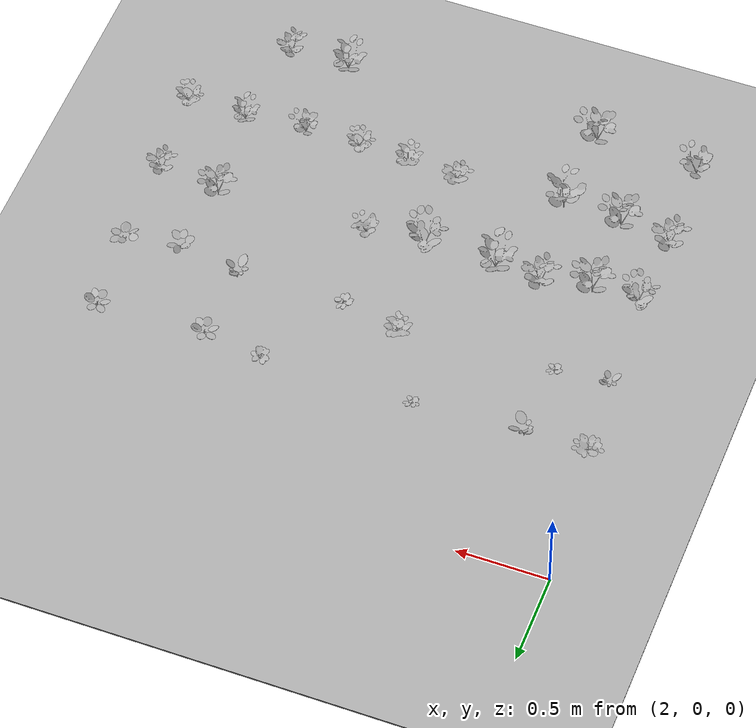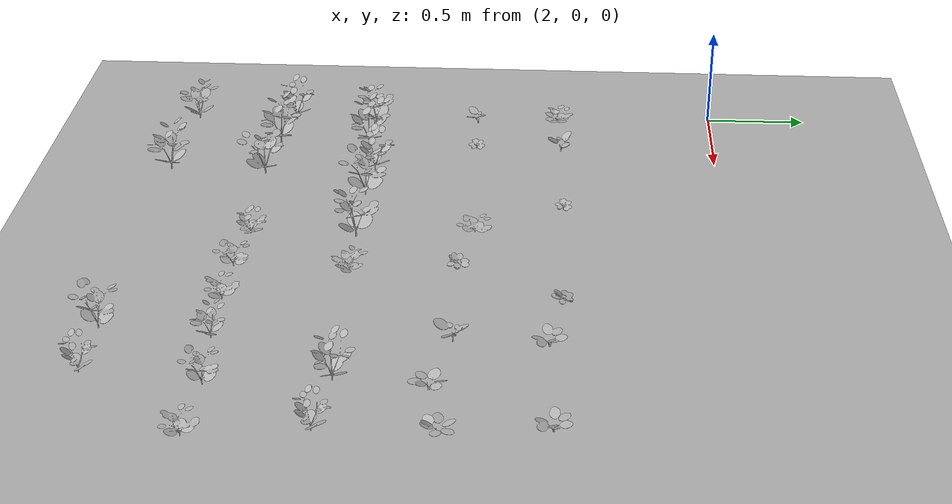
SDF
<sdf version="1.7">
 <world name="default">
  <model name="ground_plane">
   <static>1</static>
   <link name="link">
    <collision name="collision">
     <geometry><plane><normal>0 0 1</normal><size>100 100</size></plane></geometry>
     <surface>
      <contact><collide_bitmask>65535</collide_bitmask></contact>
      <friction><ode><mu>100</mu><mu2>50</mu2></ode></friction>
     </surface>
    </collision>
    <visual name="visual">
     <cast_shadows>0</cast_shadows>
     <geometry><plane><normal>0 0 1</normal><size>100 100</size></plane></geometry>
     <material>
      <ambient>0.2 0.2 0.2 1.0</ambient>
      <diffuse>0.2 0.2 0.2 1.0</diffuse>
      <specular>0.2 0.2 0.2 1.0</specular>
      <emissive>0.2 0.2 0.2 1.0</emissive>
     </material>
    </visual>
   </link>
  </model>
  <model name="ground">
   <pose>5 -0.5 0.01  3.141592654 0 0</pose>
   <static>true</static>
   <link name="body">
    <visual name="visual">
     <cast_shadows>0</cast_shadows>
     <geometry>
      <mesh><uri>file:///home/ifcosta/catkin_ws/src/cnn_line/worlds/models/ground.obj</uri></mesh>
     </geometry>
    </visual>
   </link>
  </model>
  <model name="plt_7">
   <pose>2.12 -1.23 0.0155 0.0 0.0 0.28012</pose>
   <static>true</static>
   <link name="body">
    <visual name="visual">
     <geometry>
      <mesh><uri>file:///home/ifcosta/catkin_ws/src/cnn_line/worlds/models/plant1.obj</uri></mesh>
     </geometry>
    </visual>
   </link>
  </model>
  <model name="plt_8">
   <pose>2.41 -1.22 0.0153 0.0 0.0 0.33012</pose>
   <static>true</static>
   <link name="body">
    <visual name="visual">
     <geometry>
      <mesh><uri>file:///home/ifcosta/catkin_ws/src/cnn_line/worlds/models/plant4.obj</uri></mesh>
     </geometry>
    </visual>
   </link>
  </model>
  <model name="plt_11">
   <pose>3.26 -1.18 0.0165 0.0 0.0 0.89227</pose>
   <static>true</static>
   <link name="body">
    <visual name="visual">
     <geometry>
      <mesh><uri>file:///home/ifcosta/catkin_ws/src/cnn_line/worlds/models/plant0.obj</uri></mesh>
     </geometry>
    </visual>
   </link>
  </model>
  <model name="plt_12">
   <pose>3.58 -1.24 0.012 0.0 0.0 0.88482</pose>
   <static>true</static>
   <link name="body">
    <visual name="visual">
     <geometry>
      <mesh><uri>file:///home/ifcosta/catkin_ws/src/cnn_line/worlds/models/plant5.obj</uri></mesh>
     </geometry>
    </visual>
   </link>
  </model>
  <model name="plt_14">
   <pose>4.19 -1.23 0.0128 0.0 0.0 -2.1002</pose>
   <static>true</static>
   <link name="body">
    <visual name="visual">
     <geometry>
      <mesh><uri>file:///home/ifcosta/catkin_ws/src/cnn_line/worlds/models/plant3.obj</uri></mesh>
     </geometry>
    </visual>
   </link>
  </model>
  <model name="plt_15">
   <pose>4.51 -1.29 0.0145 0.0 0.0 2.1529</pose>
   <static>true</static>
   <link name="body">
    <visual name="visual">
     <geometry>
      <mesh><uri>file:///home/ifcosta/catkin_ws/src/cnn_line/worlds/models/plant2.obj</uri></mesh>
     </geometry>
    </visual>
   </link>
  </model>
  <model name="plt_16">
   <pose>4.81 -1.25 0.0153 0.0 0.0 -1.7667</pose>
   <static>true</static>
   <link name="body">
    <visual name="visual">
     <geometry>
      <mesh><uri>file:///home/ifcosta/catkin_ws/src/cnn_line/worlds/models/plant2.obj</uri></mesh>
     </geometry>
    </visual>
   </link>
  </model>
  <model name="plt_41">
   <pose>2.08 -0.808 0.0134 0.0 0.0 -1.1456</pose>
   <static>true</static>
   <link name="body">
    <visual name="visual">
     <geometry>
      <mesh><uri>file:///home/ifcosta/catkin_ws/src/cnn_line/worlds/models/plant0.obj</uri></mesh>
     </geometry>
    </visual>
   </link>
  </model>
  <model name="plt_42">
   <pose>2.44 -0.77 0.0154 0.0 0.0 -1.1835</pose>
   <static>true</static>
   <link name="body">
    <visual name="visual">
     <geometry>
      <mesh><uri>file:///home/ifcosta/catkin_ws/src/cnn_line/worlds/models/plant3.obj</uri></mesh>
     </geometry>
    </visual>
   </link>
  </model>
  <model name="plt_44">
   <pose>3.02 -0.764 0.0167 0.0 0.0 0.11969</pose>
   <static>true</static>
   <link name="body">
    <visual name="visual">
     <geometry>
      <mesh><uri>file:///home/ifcosta/catkin_ws/src/cnn_line/worlds/models/plant4.obj</uri></mesh>
     </geometry>
    </visual>
   </link>
  </model>
  <model name="plt_47">
   <pose>3.85 -0.755 0.0146 0.0 0.0 1.9338</pose>
   <static>true</static>
   <link name="body">
    <visual name="visual">
     <geometry>
      <mesh><uri>file:///home/ifcosta/catkin_ws/src/cnn_line/worlds/models/plant5.obj</uri></mesh>
     </geometry>
    </visual>
   </link>
  </model>
  <model name="plt_48">
   <pose>4.19 -0.81 0.014 0.0 0.0 -0.094482</pose>
   <static>true</static>
   <link name="body">
    <visual name="visual">
     <geometry>
      <mesh><uri>file:///home/ifcosta/catkin_ws/src/cnn_line/worlds/models/plant2.obj</uri></mesh>
     </geometry>
    </visual>
   </link>
  </model>
  <model name="plt_50">
   <pose>4.78 -0.785 0.0175 0.0 0.0 -0.36478</pose>
   <static>true</static>
   <link name="body">
    <visual name="visual">
     <geometry>
      <mesh><uri>file:///home/ifcosta/catkin_ws/src/cnn_line/worlds/models/plant2.obj</uri></mesh>
     </geometry>
    </visual>
   </link>
  </model>
  <model name="plt_10109">
   <pose>2.14 -2.72 0.0145 0.0 0.0 -2.0586</pose>
   <static>true</static>
   <link name="body">
    <visual name="visual">
     <geometry>
      <mesh><uri>file:///home/ifcosta/catkin_ws/src/cnn_line/worlds/models/plant12.obj</uri></mesh>
     </geometry>
    </visual>
   </link>
  </model>
  <model name="plt_10111">
   <pose>2.71 -2.75 0.0155 0.0 0.0 -1.4388</pose>
   <static>true</static>
   <link name="body">
    <visual name="visual">
     <geometry>
      <mesh><uri>file:///home/ifcosta/catkin_ws/src/cnn_line/worlds/models/plant13.obj</uri></mesh>
     </geometry>
    </visual>
   </link>
  </model>
  <model name="plt_10116">
   <pose>4.14 -2.76 0.0131 0.0 0.0 0.6945</pose>
   <static>true</static>
   <link name="body">
    <visual name="visual">
     <geometry>
      <mesh><uri>file:///home/ifcosta/catkin_ws/src/cnn_line/worlds/models/plant12.obj</uri></mesh>
     </geometry>
    </visual>
   </link>
  </model>
  <model name="plt_10117">
   <pose>4.47 -2.76 0.0148 0.0 0.0 -0.18004</pose>
   <static>true</static>
   <link name="body">
    <visual name="visual">
     <geometry>
      <mesh><uri>file:///home/ifcosta/catkin_ws/src/cnn_line/worlds/models/plant11.obj</uri></mesh>
     </geometry>
    </visual>
   </link>
  </model>
  <model name="plt_10143">
   <pose>2.12 -2.2 0.0142 0.0 0.0 -0.61574</pose>
   <static>true</static>
   <link name="body">
    <visual name="visual">
     <geometry>
      <mesh><uri>file:///home/ifcosta/catkin_ws/src/cnn_line/worlds/models/plant12.obj</uri></mesh>
     </geometry>
    </visual>
   </link>
  </model>
  <model name="plt_10144">
   <pose>2.4 -2.24 0.0167 0.0 0.0 -1.238</pose>
   <static>true</static>
   <link name="body">
    <visual name="visual">
     <geometry>
      <mesh><uri>file:///home/ifcosta/catkin_ws/src/cnn_line/worlds/models/plant13.obj</uri></mesh>
     </geometry>
    </visual>
   </link>
  </model>
  <model name="plt_10145">
   <pose>2.73 -2.27 0.013 0.0 0.0 -3.0611</pose>
   <static>true</static>
   <link name="body">
    <visual name="visual">
     <geometry>
      <mesh><uri>file:///home/ifcosta/catkin_ws/src/cnn_line/worlds/models/plant13.obj</uri></mesh>
     </geometry>
    </visual>
   </link>
  </model>
  <model name="plt_10147">
   <pose>3.32 -2.24 0.0153 0.0 0.0 -0.66201</pose>
   <static>true</static>
   <link name="body">
    <visual name="visual">
     <geometry>
      <mesh><uri>file:///home/ifcosta/catkin_ws/src/cnn_line/worlds/models/plant10.obj</uri></mesh>
     </geometry>
    </visual>
   </link>
  </model>
  <model name="plt_10148">
   <pose>3.61 -2.27 0.0126 0.0 0.0 0.78243</pose>
   <static>true</static>
   <link name="body">
    <visual name="visual">
     <geometry>
      <mesh><uri>file:///home/ifcosta/catkin_ws/src/cnn_line/worlds/models/plant10.obj</uri></mesh>
     </geometry>
    </visual>
   </link>
  </model>
  <model name="plt_10149">
   <pose>3.89 -2.27 0.0139 0.0 0.0 1.4824</pose>
   <static>true</static>
   <link name="body">
    <visual name="visual">
     <geometry>
      <mesh><uri>file:///home/ifcosta/catkin_ws/src/cnn_line/worlds/models/plant10.obj</uri></mesh>
     </geometry>
    </visual>
   </link>
  </model>
  <model name="plt_10150">
   <pose>4.19 -2.26 0.0145 0.0 0.0 -1.5597</pose>
   <static>true</static>
   <link name="body">
    <visual name="visual">
     <geometry>
      <mesh><uri>file:///home/ifcosta/catkin_ws/src/cnn_line/worlds/models/plant11.obj</uri></mesh>
     </geometry>
    </visual>
   </link>
  </model>
  <model name="plt_10151">
   <pose>4.53 -2.23 0.0137 0.0 0.0 0.88173</pose>
   <static>true</static>
   <link name="body">
    <visual name="visual">
     <geometry>
      <mesh><uri>file:///home/ifcosta/catkin_ws/src/cnn_line/worlds/models/plant11.obj</uri></mesh>
     </geometry>
    </visual>
   </link>
  </model>
  <model name="plt_10152">
   <pose>4.87 -2.25 0.0126 0.0 0.0 1.3801</pose>
   <static>true</static>
   <link name="body">
    <visual name="visual">
     <geometry>
      <mesh><uri>file:///home/ifcosta/catkin_ws/src/cnn_line/worlds/models/plant10.obj</uri></mesh>
     </geometry>
    </visual>
   </link>
  </model>
  <model name="plt_10177">
   <pose>2.15 -1.77 0.0153 0.0 0.0 1.7139</pose>
   <static>true</static>
   <link name="body">
    <visual name="visual">
     <geometry>
      <mesh><uri>file:///home/ifcosta/catkin_ws/src/cnn_line/worlds/models/plant12.obj</uri></mesh>
     </geometry>
    </visual>
   </link>
  </model>
  <model name="plt_10178">
   <pose>2.4 -1.78 0.0163 0.0 0.0 -1.0554</pose>
   <static>true</static>
   <link name="body">
    <visual name="visual">
     <geometry>
      <mesh><uri>file:///home/ifcosta/catkin_ws/src/cnn_line/worlds/models/plant13.obj</uri></mesh>
     </geometry>
    </visual>
   </link>
  </model>
  <model name="plt_10179">
   <pose>2.67 -1.72 0.0138 0.0 0.0 -0.59934</pose>
   <static>true</static>
   <link name="body">
    <visual name="visual">
     <geometry>
      <mesh><uri>file:///home/ifcosta/catkin_ws/src/cnn_line/worlds/models/plant12.obj</uri></mesh>
     </geometry>
    </visual>
   </link>
  </model>
  <model name="plt_10180">
   <pose>2.92 -1.74 0.0149 0.0 0.0 0.84997</pose>
   <static>true</static>
   <link name="body">
    <visual name="visual">
     <geometry>
      <mesh><uri>file:///home/ifcosta/catkin_ws/src/cnn_line/worlds/models/plant13.obj</uri></mesh>
     </geometry>
    </visual>
   </link>
  </model>
  <model name="plt_10181">
   <pose>3.32 -1.74 0.0137 0.0 0.0 1.5353</pose>
   <static>true</static>
   <link name="body">
    <visual name="visual">
     <geometry>
      <mesh><uri>file:///home/ifcosta/catkin_ws/src/cnn_line/worlds/models/plant13.obj</uri></mesh>
     </geometry>
    </visual>
   </link>
  </model>
  <model name="plt_10182">
   <pose>3.64 -1.73 0.018 0.0 0.0 -2.1044</pose>
   <static>true</static>
   <link name="body">
    <visual name="visual">
     <geometry>
      <mesh><uri>file:///home/ifcosta/catkin_ws/src/cnn_line/worlds/models/plant10.obj</uri></mesh>
     </geometry>
    </visual>
   </link>
  </model>
  <model name="plt_10185">
   <pose>4.47 -1.7 0.0139 0.0 0.0 -0.92627</pose>
   <static>true</static>
   <link name="body">
    <visual name="visual">
     <geometry>
      <mesh><uri>file:///home/ifcosta/catkin_ws/src/cnn_line/worlds/models/plant12.obj</uri></mesh>
     </geometry>
    </visual>
   </link>
  </model>
  <model name="plt_10186">
   <pose>4.81 -1.74 0.0149 0.0 0.0 -0.4779</pose>
   <static>true</static>
   <link name="body">
    <visual name="visual">
     <geometry>
      <mesh><uri>file:///home/ifcosta/catkin_ws/src/cnn_line/worlds/models/plant11.obj</uri></mesh>
     </geometry>
    </visual>
   </link>
  </model>
 </world>
</sdf>
